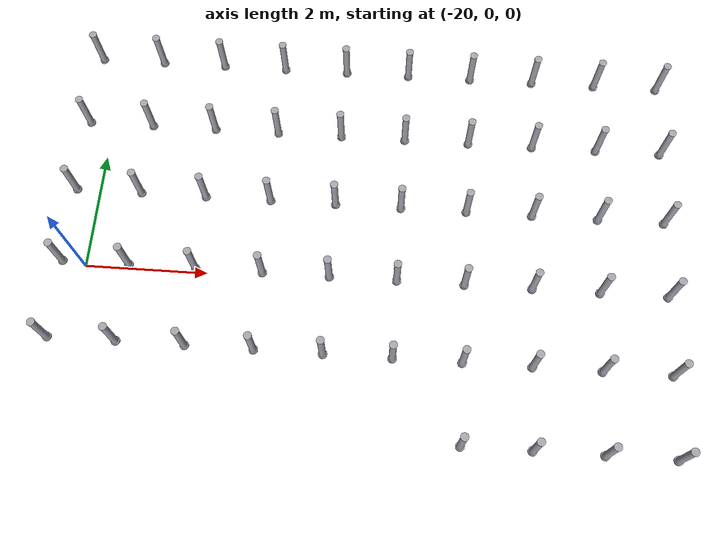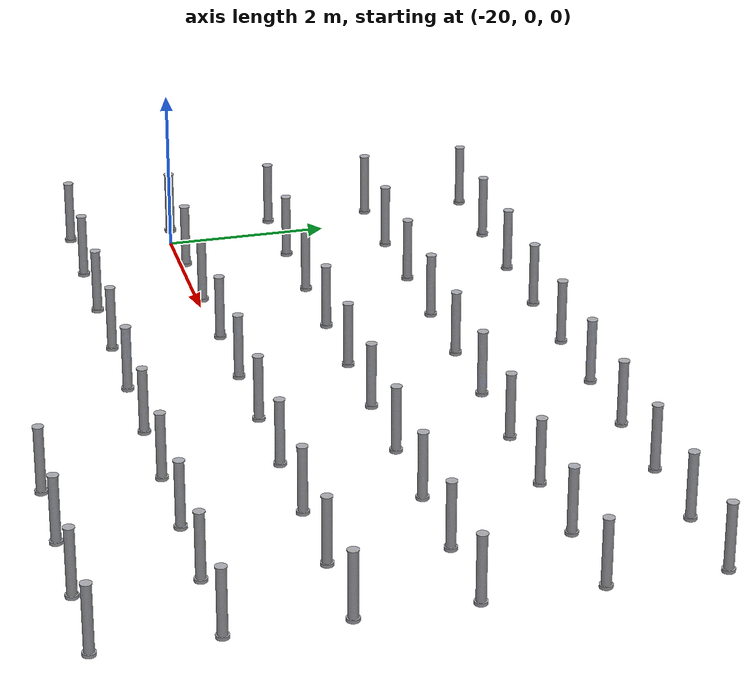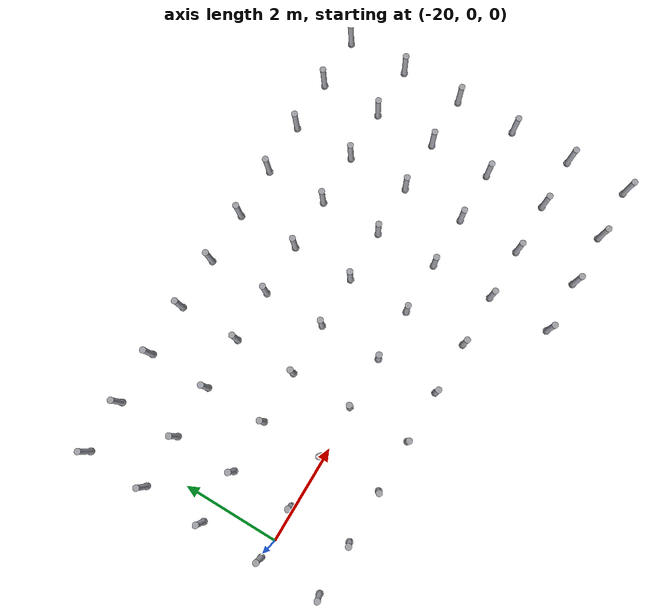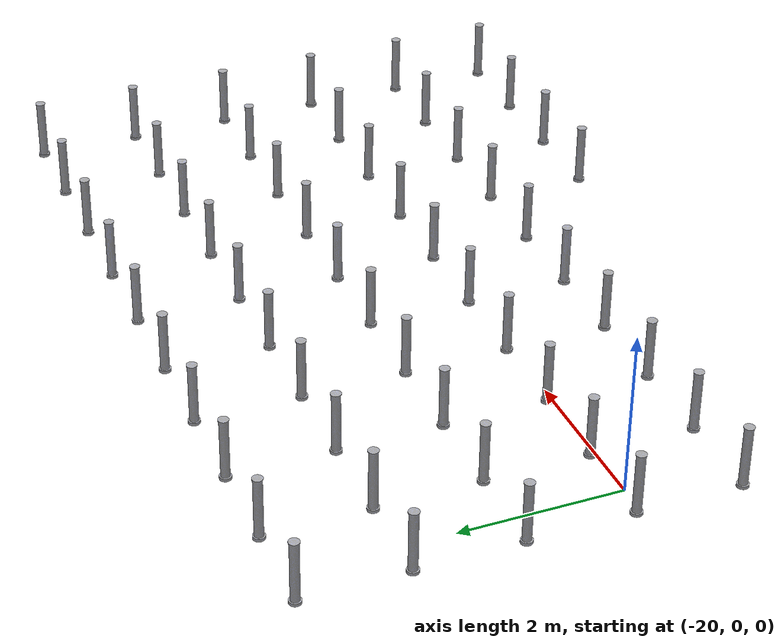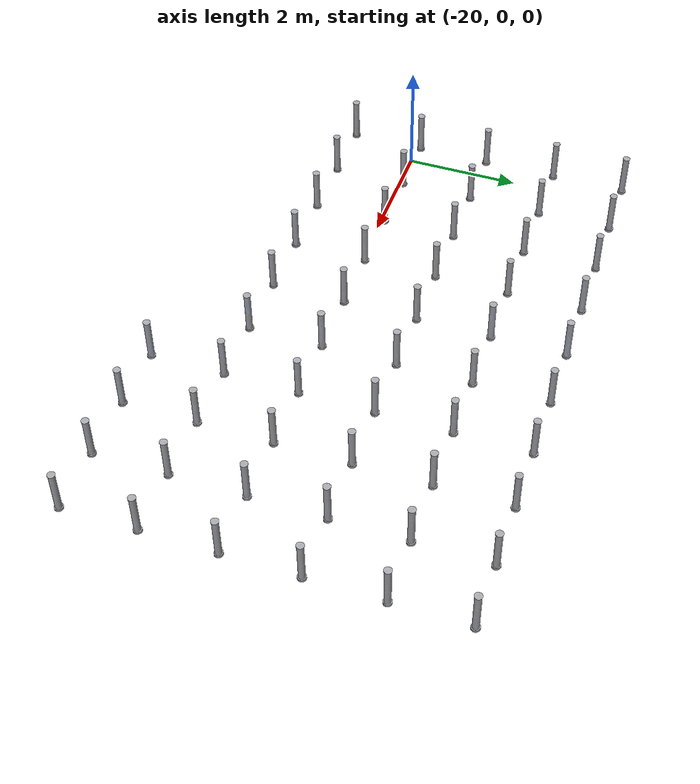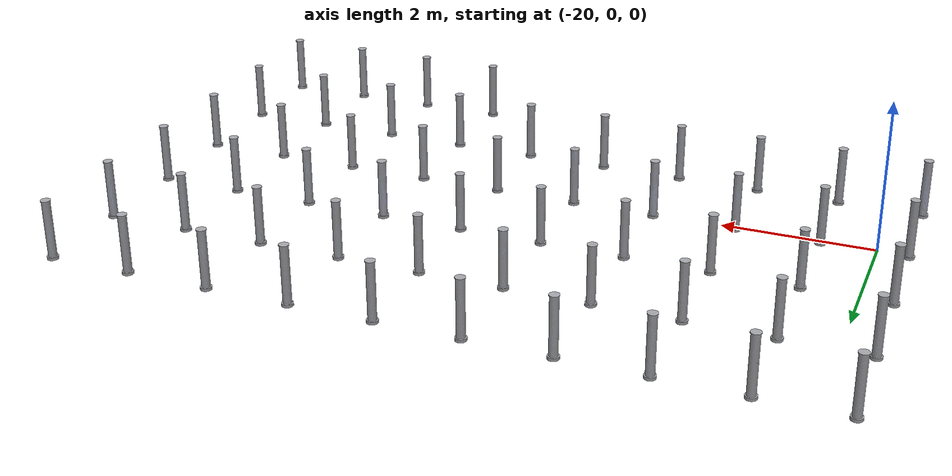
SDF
<sdf version="1.7">
 <model name="world">
  <pose>-10.459 -2.598 0 0 -0 0</pose>
  <include>
   <uri>model://pillar</uri>
   <name>pillar_-9.999999999999986_1.299999999999999</name>
   <pose>-9.999999999999986 1.299999999999999 0 0 0 0</pose>
  </include>
  <include>
   <uri>model://pillar</uri>
   <name>pillar_-9.999999999999986_2.599999999999998</name>
   <pose>-9.999999999999986 2.599999999999998 0 0 0 0</pose>
  </include>
  <include>
   <uri>model://pillar</uri>
   <name>pillar_-9.999999999999986_3.8999999999999986</name>
   <pose>-9.999999999999986 3.8999999999999986 0 0 0 0</pose>
  </include>
  <include>
   <uri>model://pillar</uri>
   <name>pillar_-9.999999999999986_5.199999999999999</name>
   <pose>-9.999999999999986 5.199999999999999 0 0 0 0</pose>
  </include>
  <include>
   <uri>model://pillar</uri>
   <name>pillar_-9.999999999999986_6.499999999999998</name>
   <pose>-9.999999999999986 6.499999999999998 0 0 0 0</pose>
  </include>
  <include>
   <uri>model://pillar</uri>
   <name>pillar_-8.899999999999984_1.299999999999999</name>
   <pose>-8.899999999999984 1.299999999999999 0 0 0 0</pose>
  </include>
  <include>
   <uri>model://pillar</uri>
   <name>pillar_-8.899999999999984_2.599999999999998</name>
   <pose>-8.899999999999984 2.599999999999998 0 0 0 0</pose>
  </include>
  <include>
   <uri>model://pillar</uri>
   <name>pillar_-8.899999999999984_3.8999999999999986</name>
   <pose>-8.899999999999984 3.8999999999999986 0 0 0 0</pose>
  </include>
  <include>
   <uri>model://pillar</uri>
   <name>pillar_-8.899999999999984_5.199999999999999</name>
   <pose>-8.899999999999984 5.199999999999999 0 0 0 0</pose>
  </include>
  <include>
   <uri>model://pillar</uri>
   <name>pillar_-8.899999999999984_6.499999999999998</name>
   <pose>-8.899999999999984 6.499999999999998 0 0 0 0</pose>
  </include>
  <include>
   <uri>model://pillar</uri>
   <name>pillar_-7.799999999999983_1.299999999999999</name>
   <pose>-7.799999999999983 1.299999999999999 0 0 0 0</pose>
  </include>
  <include>
   <uri>model://pillar</uri>
   <name>pillar_-7.799999999999983_2.599999999999998</name>
   <pose>-7.799999999999983 2.599999999999998 0 0 0 0</pose>
  </include>
  <include>
   <uri>model://pillar</uri>
   <name>pillar_-7.799999999999983_3.8999999999999986</name>
   <pose>-7.799999999999983 3.8999999999999986 0 0 0 0</pose>
  </include>
  <include>
   <uri>model://pillar</uri>
   <name>pillar_-7.799999999999983_5.199999999999999</name>
   <pose>-7.799999999999983 5.199999999999999 0 0 0 0</pose>
  </include>
  <include>
   <uri>model://pillar</uri>
   <name>pillar_-7.799999999999983_6.499999999999998</name>
   <pose>-7.799999999999983 6.499999999999998 0 0 0 0</pose>
  </include>
  <include>
   <uri>model://pillar</uri>
   <name>pillar_-6.6999999999999815_1.299999999999999</name>
   <pose>-6.6999999999999815 1.299999999999999 0 0 0 0</pose>
  </include>
  <include>
   <uri>model://pillar</uri>
   <name>pillar_-6.6999999999999815_2.599999999999998</name>
   <pose>-6.6999999999999815 2.599999999999998 0 0 0 0</pose>
  </include>
  <include>
   <uri>model://pillar</uri>
   <name>pillar_-6.6999999999999815_3.8999999999999986</name>
   <pose>-6.6999999999999815 3.8999999999999986 0 0 0 0</pose>
  </include>
  <include>
   <uri>model://pillar</uri>
   <name>pillar_-6.6999999999999815_5.199999999999999</name>
   <pose>-6.6999999999999815 5.199999999999999 0 0 0 0</pose>
  </include>
  <include>
   <uri>model://pillar</uri>
   <name>pillar_-6.6999999999999815_6.499999999999998</name>
   <pose>-6.6999999999999815 6.499999999999998 0 0 0 0</pose>
  </include>
  <include>
   <uri>model://pillar</uri>
   <name>pillar_-5.59999999999998_1.299999999999999</name>
   <pose>-5.59999999999998 1.299999999999999 0 0 0 0</pose>
  </include>
  <include>
   <uri>model://pillar</uri>
   <name>pillar_-5.59999999999998_2.599999999999998</name>
   <pose>-5.59999999999998 2.599999999999998 0 0 0 0</pose>
  </include>
  <include>
   <uri>model://pillar</uri>
   <name>pillar_-5.59999999999998_3.8999999999999986</name>
   <pose>-5.59999999999998 3.8999999999999986 0 0 0 0</pose>
  </include>
  <include>
   <uri>model://pillar</uri>
   <name>pillar_-5.59999999999998_5.199999999999999</name>
   <pose>-5.59999999999998 5.199999999999999 0 0 0 0</pose>
  </include>
  <include>
   <uri>model://pillar</uri>
   <name>pillar_-5.59999999999998_6.499999999999998</name>
   <pose>-5.59999999999998 6.499999999999998 0 0 0 0</pose>
  </include>
  <include>
   <uri>model://pillar</uri>
   <name>pillar_-4.499999999999979_1.299999999999999</name>
   <pose>-4.499999999999979 1.299999999999999 0 0 0 0</pose>
  </include>
  <include>
   <uri>model://pillar</uri>
   <name>pillar_-4.499999999999979_2.599999999999998</name>
   <pose>-4.499999999999979 2.599999999999998 0 0 0 0</pose>
  </include>
  <include>
   <uri>model://pillar</uri>
   <name>pillar_-4.499999999999979_3.8999999999999986</name>
   <pose>-4.499999999999979 3.8999999999999986 0 0 0 0</pose>
  </include>
  <include>
   <uri>model://pillar</uri>
   <name>pillar_-4.499999999999979_5.199999999999999</name>
   <pose>-4.499999999999979 5.199999999999999 0 0 0 0</pose>
  </include>
  <include>
   <uri>model://pillar</uri>
   <name>pillar_-4.499999999999979_6.499999999999998</name>
   <pose>-4.499999999999979 6.499999999999998 0 0 0 0</pose>
  </include>
  <include>
   <uri>model://pillar</uri>
   <name>pillar_-3.3999999999999773_-8.881784197001252e-16</name>
   <pose>-3.3999999999999773 -8.881784197001252e-16 0 0 0 0</pose>
  </include>
  <include>
   <uri>model://pillar</uri>
   <name>pillar_-3.3999999999999773_1.299999999999999</name>
   <pose>-3.3999999999999773 1.299999999999999 0 0 0 0</pose>
  </include>
  <include>
   <uri>model://pillar</uri>
   <name>pillar_-3.3999999999999773_2.599999999999998</name>
   <pose>-3.3999999999999773 2.599999999999998 0 0 0 0</pose>
  </include>
  <include>
   <uri>model://pillar</uri>
   <name>pillar_-3.3999999999999773_3.8999999999999986</name>
   <pose>-3.3999999999999773 3.8999999999999986 0 0 0 0</pose>
  </include>
  <include>
   <uri>model://pillar</uri>
   <name>pillar_-3.3999999999999773_5.199999999999999</name>
   <pose>-3.3999999999999773 5.199999999999999 0 0 0 0</pose>
  </include>
  <include>
   <uri>model://pillar</uri>
   <name>pillar_-3.3999999999999773_6.499999999999998</name>
   <pose>-3.3999999999999773 6.499999999999998 0 0 0 0</pose>
  </include>
  <include>
   <uri>model://pillar</uri>
   <name>pillar_-2.299999999999976_-8.881784197001252e-16</name>
   <pose>-2.299999999999976 -8.881784197001252e-16 0 0 0 0</pose>
  </include>
  <include>
   <uri>model://pillar</uri>
   <name>pillar_-2.299999999999976_1.299999999999999</name>
   <pose>-2.299999999999976 1.299999999999999 0 0 0 0</pose>
  </include>
  <include>
   <uri>model://pillar</uri>
   <name>pillar_-2.299999999999976_2.599999999999998</name>
   <pose>-2.299999999999976 2.599999999999998 0 0 0 0</pose>
  </include>
  <include>
   <uri>model://pillar</uri>
   <name>pillar_-2.299999999999976_3.8999999999999986</name>
   <pose>-2.299999999999976 3.8999999999999986 0 0 0 0</pose>
  </include>
  <include>
   <uri>model://pillar</uri>
   <name>pillar_-2.299999999999976_5.199999999999999</name>
   <pose>-2.299999999999976 5.199999999999999 0 0 0 0</pose>
  </include>
  <include>
   <uri>model://pillar</uri>
   <name>pillar_-2.299999999999976_6.499999999999998</name>
   <pose>-2.299999999999976 6.499999999999998 0 0 0 0</pose>
  </include>
  <include>
   <uri>model://pillar</uri>
   <name>pillar_-1.1999999999999744_-8.881784197001252e-16</name>
   <pose>-1.1999999999999744 -8.881784197001252e-16 0 0 0 0</pose>
  </include>
  <include>
   <uri>model://pillar</uri>
   <name>pillar_-1.1999999999999744_1.299999999999999</name>
   <pose>-1.1999999999999744 1.299999999999999 0 0 0 0</pose>
  </include>
  <include>
   <uri>model://pillar</uri>
   <name>pillar_-1.1999999999999744_2.599999999999998</name>
   <pose>-1.1999999999999744 2.599999999999998 0 0 0 0</pose>
  </include>
  <include>
   <uri>model://pillar</uri>
   <name>pillar_-1.1999999999999744_3.8999999999999986</name>
   <pose>-1.1999999999999744 3.8999999999999986 0 0 0 0</pose>
  </include>
  <include>
   <uri>model://pillar</uri>
   <name>pillar_-1.1999999999999744_5.199999999999999</name>
   <pose>-1.1999999999999744 5.199999999999999 0 0 0 0</pose>
  </include>
  <include>
   <uri>model://pillar</uri>
   <name>pillar_-1.1999999999999744_6.499999999999998</name>
   <pose>-1.1999999999999744 6.499999999999998 0 0 0 0</pose>
  </include>
  <include>
   <uri>model://pillar</uri>
   <name>pillar_-0.099999999999973_-8.881784197001252e-16</name>
   <pose>-0.099999999999973 -8.881784197001252e-16 0 0 0 0</pose>
  </include>
  <include>
   <uri>model://pillar</uri>
   <name>pillar_-0.099999999999973_1.299999999999999</name>
   <pose>-0.099999999999973 1.299999999999999 0 0 0 0</pose>
  </include>
  <include>
   <uri>model://pillar</uri>
   <name>pillar_-0.099999999999973_2.599999999999998</name>
   <pose>-0.099999999999973 2.599999999999998 0 0 0 0</pose>
  </include>
  <include>
   <uri>model://pillar</uri>
   <name>pillar_-0.099999999999973_3.8999999999999986</name>
   <pose>-0.099999999999973 3.8999999999999986 0 0 0 0</pose>
  </include>
  <include>
   <uri>model://pillar</uri>
   <name>pillar_-0.099999999999973_5.199999999999999</name>
   <pose>-0.099999999999973 5.199999999999999 0 0 0 0</pose>
  </include>
  <include>
   <uri>model://pillar</uri>
   <name>pillar_-0.099999999999973_6.499999999999998</name>
   <pose>-0.099999999999973 6.499999999999998 0 0 0 0</pose>
  </include>
  <static>1</static>
 </model>
</sdf>
